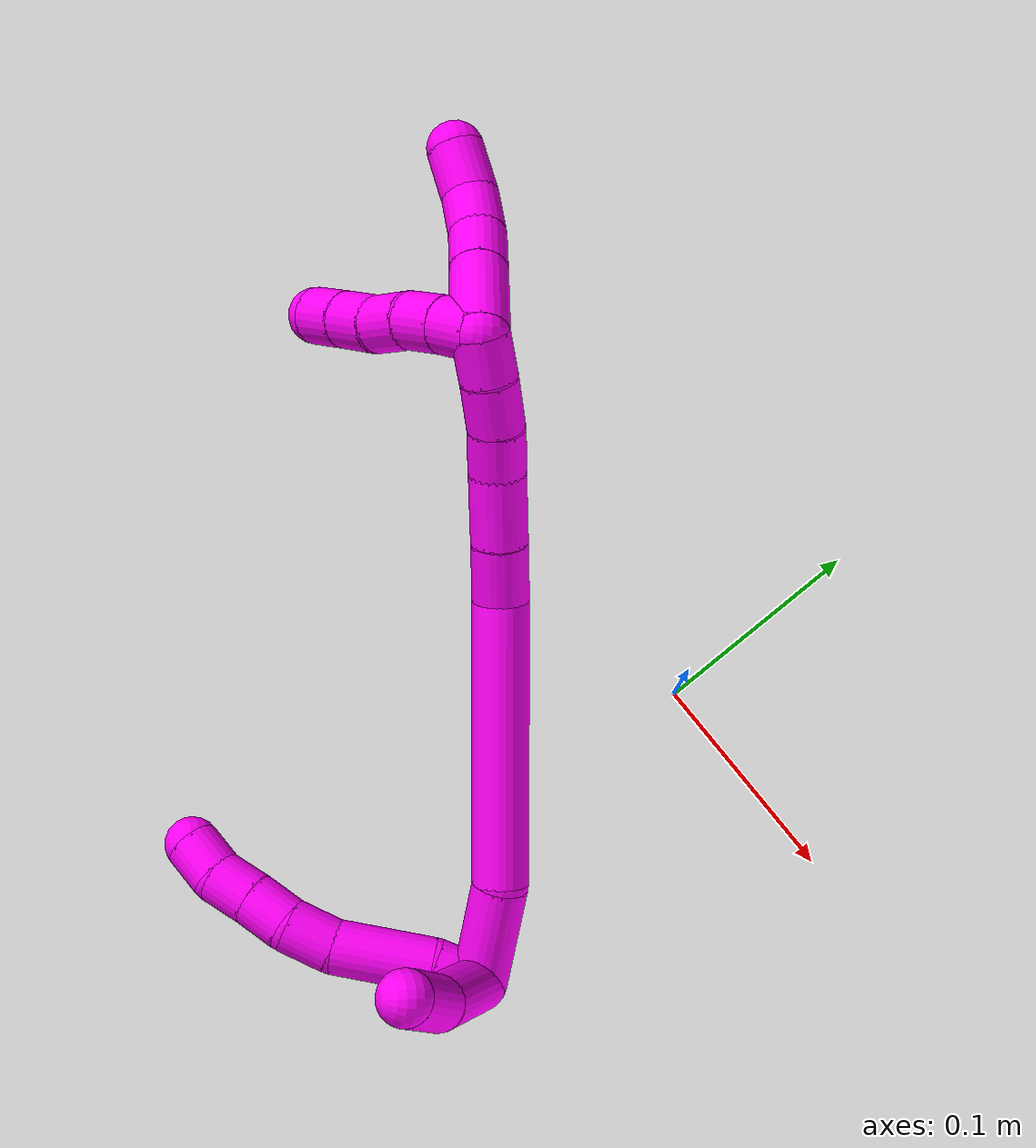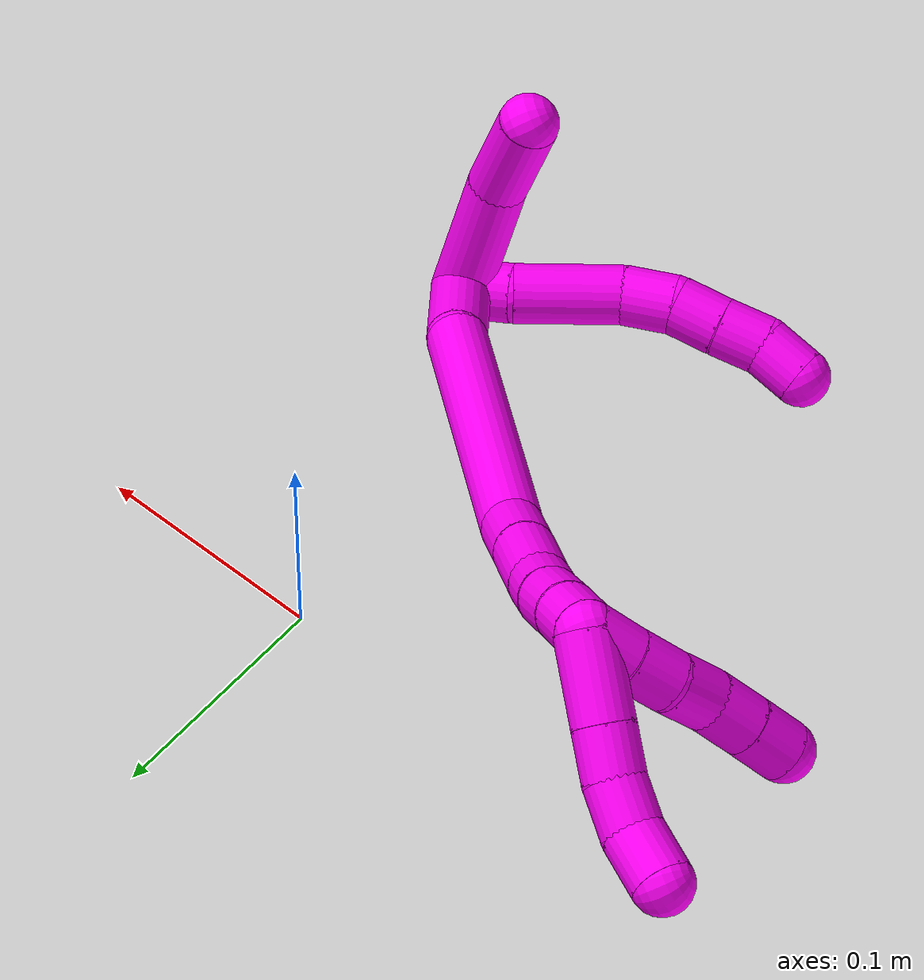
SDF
<sdf version="1.7">
 <world name="default">
  <model name="10">
   <static>0</static>
   <link name="10">
    <collision name="collision-cylinder-e_1_2_8">
     <pose>-0.002143 0.005058 0.009411 -0.493132 -0.197918 0.049966</pose>
     <geometry><cylinder><radius>0.0125</radius><length>0.021793</length></cylinder></geometry>
     <surface>
      <friction><ode><mu>1.16</mu><mu2>1.16</mu2><slip1>0</slip1><slip2>0</slip2></ode></friction>
      <contact><ode><kp>1e+06</kp><kd>1</kd><max_vel>0</max_vel><min_depth>0.001</min_depth></ode></contact>
     </surface>
    </collision>
    <visual name="visual-cylinder-e_1_2_8">
     <pose>-0.002143 0.005058 0.009411 -0.493132 -0.197918 0.049966</pose>
     <geometry><cylinder><radius>0.0125</radius><length>0.021793</length></cylinder></geometry>
     <material><ambient>1 0 0.964706 1</ambient></material>
    </visual>
    <collision name="collision-cylinder-e_2_8_9">
     <pose>-0.012352 0.017554 0.038801 -0.356446 -0.361726 0.065855</pose>
     <geometry><cylinder><radius>0.0125</radius><length>0.045589</length></cylinder></geometry>
     <surface>
      <friction><ode><mu>1.16</mu><mu2>1.16</mu2><slip1>0</slip1><slip2>0</slip2></ode></friction>
      <contact><ode><kp>1e+06</kp><kd>1</kd><max_vel>0</max_vel><min_depth>0.001</min_depth></ode></contact>
     </surface>
    </collision>
    <visual name="visual-cylinder-e_2_8_9">
     <pose>-0.012352 0.017554 0.038801 -0.356446 -0.361726 0.065855</pose>
     <geometry><cylinder><radius>0.0125</radius><length>0.045589</length></cylinder></geometry>
     <material><ambient>1 0 0.964706 1</ambient></material>
    </visual>
    <collision name="collision-cylinder-e_3_9_10">
     <pose>-0.022813 0.031012 0.067982 -0.579208 -0.214412 0.064115</pose>
     <geometry><cylinder><radius>0.0125</radius><length>0.022506</length></cylinder></geometry>
     <surface>
      <friction><ode><mu>1.16</mu><mu2>1.16</mu2><slip1>0</slip1><slip2>0</slip2></ode></friction>
      <contact><ode><kp>1e+06</kp><kd>1</kd><max_vel>0</max_vel><min_depth>0.001</min_depth></ode></contact>
     </surface>
    </collision>
    <visual name="visual-cylinder-e_3_9_10">
     <pose>-0.022813 0.031012 0.067982 -0.579208 -0.214412 0.064115</pose>
     <geometry><cylinder><radius>0.0125</radius><length>0.022506</length></cylinder></geometry>
     <material><ambient>1 0 0.964706 1</ambient></material>
    </visual>
    <collision name="collision-cylinder-e_4_10_11">
     <pose>-0.028266 0.044152 0.083583 -0.838828 -0.309204 0.138751</pose>
     <geometry><cylinder><radius>0.0125</radius><length>0.020101</length></cylinder></geometry>
     <surface>
      <friction><ode><mu>1.16</mu><mu2>1.16</mu2><slip1>0</slip1><slip2>0</slip2></ode></friction>
      <contact><ode><kp>1e+06</kp><kd>1</kd><max_vel>0</max_vel><min_depth>0.001</min_depth></ode></contact>
     </surface>
    </collision>
    <visual name="visual-cylinder-e_4_10_11">
     <pose>-0.028266 0.044152 0.083583 -0.838828 -0.309204 0.138751</pose>
     <geometry><cylinder><radius>0.0125</radius><length>0.020101</length></cylinder></geometry>
     <material><ambient>1 0 0.964706 1</ambient></material>
    </visual>
    <collision name="collision-cylinder-e_5_11_12">
     <pose>-0.03473 0.05797 0.096584 -0.792489 -0.347511 0.146607</pose>
     <geometry><cylinder><radius>0.0125</radius><length>0.020004</length></cylinder></geometry>
     <surface>
      <friction><ode><mu>1.16</mu><mu2>1.16</mu2><slip1>0</slip1><slip2>0</slip2></ode></friction>
      <contact><ode><kp>1e+06</kp><kd>1</kd><max_vel>0</max_vel><min_depth>0.001</min_depth></ode></contact>
     </surface>
    </collision>
    <visual name="visual-cylinder-e_5_11_12">
     <pose>-0.03473 0.05797 0.096584 -0.792489 -0.347511 0.146607</pose>
     <geometry><cylinder><radius>0.0125</radius><length>0.020004</length></cylinder></geometry>
     <material><ambient>1 0 0.964706 1</ambient></material>
    </visual>
    <collision name="collision-cylinder-e_6_12_6">
     <pose>-0.040674 0.073291 0.107574 -1.10008 -0.256452 0.157785</pose>
     <geometry><cylinder><radius>0.0125</radius><length>0.020008</length></cylinder></geometry>
     <surface>
      <friction><ode><mu>1.16</mu><mu2>1.16</mu2><slip1>0</slip1><slip2>0</slip2></ode></friction>
      <contact><ode><kp>1e+06</kp><kd>1</kd><max_vel>0</max_vel><min_depth>0.001</min_depth></ode></contact>
     </surface>
    </collision>
    <visual name="visual-cylinder-e_6_12_6">
     <pose>-0.040674 0.073291 0.107574 -1.10008 -0.256452 0.157785</pose>
     <geometry><cylinder><radius>0.0125</radius><length>0.020008</length></cylinder></geometry>
     <material><ambient>1 0 0.964706 1</ambient></material>
    </visual>
    <collision name="collision-cylinder-e_1_2_13">
     <pose>0.019557 -0.009615 0.019504 0.458005 0.732474 0.178326</pose>
     <geometry><cylinder><radius>0.0125</radius><length>0.058492</length></cylinder></geometry>
     <surface>
      <friction><ode><mu>1.16</mu><mu2>1.16</mu2><slip1>0</slip1><slip2>0</slip2></ode></friction>
      <contact><ode><kp>1e+06</kp><kd>1</kd><max_vel>0</max_vel><min_depth>0.001</min_depth></ode></contact>
     </surface>
    </collision>
    <visual name="visual-cylinder-e_1_2_13">
     <pose>0.019557 -0.009615 0.019504 0.458005 0.732474 0.178326</pose>
     <geometry><cylinder><radius>0.0125</radius><length>0.058492</length></cylinder></geometry>
     <material><ambient>1 0 0.964706 1</ambient></material>
    </visual>
    <collision name="collision-cylinder-e_2_13_5">
     <pose>0.054419 -0.022047 0.052739 0.202378 0.82928 0.089324</pose>
     <geometry><cylinder><radius>0.0125</radius><length>0.041508</length></cylinder></geometry>
     <surface>
      <friction><ode><mu>1.16</mu><mu2>1.16</mu2><slip1>0</slip1><slip2>0</slip2></ode></friction>
      <contact><ode><kp>1e+06</kp><kd>1</kd><max_vel>0</max_vel><min_depth>0.001</min_depth></ode></contact>
     </surface>
    </collision>
    <visual name="visual-cylinder-e_2_13_5">
     <pose>0.054419 -0.022047 0.052739 0.202378 0.82928 0.089324</pose>
     <geometry><cylinder><radius>0.0125</radius><length>0.041508</length></cylinder></geometry>
     <material><ambient>1 0 0.964706 1</ambient></material>
    </visual>
    <collision name="collision-cylinder-e_1_2_14">
     <pose>0.018811 0.016824 0.000263 -1.55516 0.84105 -0.829455</pose>
     <geometry><cylinder><radius>0.0125</radius><length>0.050476</length></cylinder></geometry>
     <surface>
      <friction><ode><mu>1.16</mu><mu2>1.16</mu2><slip1>0</slip1><slip2>0</slip2></ode></friction>
      <contact><ode><kp>1e+06</kp><kd>1</kd><max_vel>0</max_vel><min_depth>0.001</min_depth></ode></contact>
     </surface>
    </collision>
    <visual name="visual-cylinder-e_1_2_14">
     <pose>0.018811 0.016824 0.000263 -1.55516 0.84105 -0.829455</pose>
     <geometry><cylinder><radius>0.0125</radius><length>0.050476</length></cylinder></geometry>
     <material><ambient>1 0 0.964706 1</ambient></material>
    </visual>
    <collision name="collision-cylinder-e_2_14_15">
     <pose>0.071092 0.086725 0.006444 -1.45975 0.559829 -0.50347</pose>
     <geometry><cylinder><radius>0.0125</radius><length>0.126057</length></cylinder></geometry>
     <surface>
      <friction><ode><mu>1.16</mu><mu2>1.16</mu2><slip1>0</slip1><slip2>0</slip2></ode></friction>
      <contact><ode><kp>1e+06</kp><kd>1</kd><max_vel>0</max_vel><min_depth>0.001</min_depth></ode></contact>
     </surface>
    </collision>
    <visual name="visual-cylinder-e_2_14_15">
     <pose>0.071092 0.086725 0.006444 -1.45975 0.559829 -0.50347</pose>
     <geometry><cylinder><radius>0.0125</radius><length>0.126057</length></cylinder></geometry>
     <material><ambient>1 0 0.964706 1</ambient></material>
    </visual>
    <collision name="collision-cylinder-e_3_15_16">
     <pose>0.114467 0.148667 0.015537 -1.22687 0.810687 -0.586785</pose>
     <geometry><cylinder><radius>0.0125</radius><length>0.027329</length></cylinder></geometry>
     <surface>
      <friction><ode><mu>1.16</mu><mu2>1.16</mu2><slip1>0</slip1><slip2>0</slip2></ode></friction>
      <contact><ode><kp>1e+06</kp><kd>1</kd><max_vel>0</max_vel><min_depth>0.001</min_depth></ode></contact>
     </surface>
    </collision>
    <visual name="visual-cylinder-e_3_15_16">
     <pose>0.114467 0.148667 0.015537 -1.22687 0.810687 -0.586785</pose>
     <geometry><cylinder><radius>0.0125</radius><length>0.027329</length></cylinder></geometry>
     <material><ambient>1 0 0.964706 1</ambient></material>
    </visual>
    <collision name="collision-cylinder-e_4_16_17">
     <pose>0.135525 0.168358 0.0223 -1.25079 0.774211 -0.572577</pose>
     <geometry><cylinder><radius>0.0125</radius><length>0.031911</length></cylinder></geometry>
     <surface>
      <friction><ode><mu>1.16</mu><mu2>1.16</mu2><slip1>0</slip1><slip2>0</slip2></ode></friction>
      <contact><ode><kp>1e+06</kp><kd>1</kd><max_vel>0</max_vel><min_depth>0.001</min_depth></ode></contact>
     </surface>
    </collision>
    <visual name="visual-cylinder-e_4_16_17">
     <pose>0.135525 0.168358 0.0223 -1.25079 0.774211 -0.572577</pose>
     <geometry><cylinder><radius>0.0125</radius><length>0.031911</length></cylinder></geometry>
     <material><ambient>1 0 0.964706 1</ambient></material>
    </visual>
    <collision name="collision-cylinder-e_5_17_18">
     <pose>0.154777 0.185176 0.028672 -1.13576 0.886634 -0.588302</pose>
     <geometry><cylinder><radius>0.0125</radius><length>0.020897</length></cylinder></geometry>
     <surface>
      <friction><ode><mu>1.16</mu><mu2>1.16</mu2><slip1>0</slip1><slip2>0</slip2></ode></friction>
      <contact><ode><kp>1e+06</kp><kd>1</kd><max_vel>0</max_vel><min_depth>0.001</min_depth></ode></contact>
     </surface>
    </collision>
    <visual name="visual-cylinder-e_5_17_18">
     <pose>0.154777 0.185176 0.028672 -1.13576 0.886634 -0.588302</pose>
     <geometry><cylinder><radius>0.0125</radius><length>0.020897</length></cylinder></geometry>
     <material><ambient>1 0 0.964706 1</ambient></material>
    </visual>
    <collision name="collision-cylinder-e_6_18_19">
     <pose>0.171008 0.197826 0.035579 -1.01651 0.804112 -0.465179</pose>
     <geometry><cylinder><radius>0.0125</radius><length>0.022588</length></cylinder></geometry>
     <surface>
      <friction><ode><mu>1.16</mu><mu2>1.16</mu2><slip1>0</slip1><slip2>0</slip2></ode></friction>
      <contact><ode><kp>1e+06</kp><kd>1</kd><max_vel>0</max_vel><min_depth>0.001</min_depth></ode></contact>
     </surface>
    </collision>
    <visual name="visual-cylinder-e_6_18_19">
     <pose>0.171008 0.197826 0.035579 -1.01651 0.804112 -0.465179</pose>
     <geometry><cylinder><radius>0.0125</radius><length>0.022588</length></cylinder></geometry>
     <material><ambient>1 0 0.964706 1</ambient></material>
    </visual>
    <collision name="collision-cylinder-e_7_19_1">
     <pose>0.185932 0.211343 0.04351 -1.06378 0.71363 -0.431879</pose>
     <geometry><cylinder><radius>0.0125</radius><length>0.020743</length></cylinder></geometry>
     <surface>
      <friction><ode><mu>1.16</mu><mu2>1.16</mu2><slip1>0</slip1><slip2>0</slip2></ode></friction>
      <contact><ode><kp>1e+06</kp><kd>1</kd><max_vel>0</max_vel><min_depth>0.001</min_depth></ode></contact>
     </surface>
    </collision>
    <visual name="visual-cylinder-e_7_19_1">
     <pose>0.185932 0.211343 0.04351 -1.06378 0.71363 -0.431879</pose>
     <geometry><cylinder><radius>0.0125</radius><length>0.020743</length></cylinder></geometry>
     <material><ambient>1 0 0.964706 1</ambient></material>
    </visual>
    <collision name="collision-cylinder-e_1_1_20">
     <pose>0.185637 0.223946 0.051413 -0.951752 -0.787199 0.421682</pose>
     <geometry><cylinder><radius>0.0125</radius><length>0.02</length></cylinder></geometry>
     <surface>
      <friction><ode><mu>1.16</mu><mu2>1.16</mu2><slip1>0</slip1><slip2>0</slip2></ode></friction>
      <contact><ode><kp>1e+06</kp><kd>1</kd><max_vel>0</max_vel><min_depth>0.001</min_depth></ode></contact>
     </surface>
    </collision>
    <visual name="visual-cylinder-e_1_1_20">
     <pose>0.185637 0.223946 0.051413 -0.951752 -0.787199 0.421682</pose>
     <geometry><cylinder><radius>0.0125</radius><length>0.02</length></cylinder></geometry>
     <material><ambient>1 0 0.964706 1</ambient></material>
    </visual>
    <collision name="collision-cylinder-e_2_20_21">
     <pose>0.171061 0.234871 0.059639 -0.897357 -0.846919 0.42736</pose>
     <geometry><cylinder><radius>0.0125</radius><length>0.02</length></cylinder></geometry>
     <surface>
      <friction><ode><mu>1.16</mu><mu2>1.16</mu2><slip1>0</slip1><slip2>0</slip2></ode></friction>
      <contact><ode><kp>1e+06</kp><kd>1</kd><max_vel>0</max_vel><min_depth>0.001</min_depth></ode></contact>
     </surface>
    </collision>
    <visual name="visual-cylinder-e_2_20_21">
     <pose>0.171061 0.234871 0.059639 -0.897357 -0.846919 0.42736</pose>
     <geometry><cylinder><radius>0.0125</radius><length>0.02</length></cylinder></geometry>
     <material><ambient>1 0 0.964706 1</ambient></material>
    </visual>
    <collision name="collision-cylinder-e_3_21_22">
     <pose>0.155022 0.243763 0.067398 -0.797234 -1.0248 0.465242</pose>
     <geometry><cylinder><radius>0.0125</radius><length>0.02</length></cylinder></geometry>
     <surface>
      <friction><ode><mu>1.16</mu><mu2>1.16</mu2><slip1>0</slip1><slip2>0</slip2></ode></friction>
      <contact><ode><kp>1e+06</kp><kd>1</kd><max_vel>0</max_vel><min_depth>0.001</min_depth></ode></contact>
     </surface>
    </collision>
    <visual name="visual-cylinder-e_3_21_22">
     <pose>0.155022 0.243763 0.067398 -0.797234 -1.0248 0.465242</pose>
     <geometry><cylinder><radius>0.0125</radius><length>0.02</length></cylinder></geometry>
     <material><ambient>1 0 0.964706 1</ambient></material>
    </visual>
    <collision name="collision-cylinder-e_4_22_23">
     <pose>0.138863 0.252887 0.074603 -0.986441 -0.865275 0.486646</pose>
     <geometry><cylinder><radius>0.0125</radius><length>0.02</length></cylinder></geometry>
     <surface>
      <friction><ode><mu>1.16</mu><mu2>1.16</mu2><slip1>0</slip1><slip2>0</slip2></ode></friction>
      <contact><ode><kp>1e+06</kp><kd>1</kd><max_vel>0</max_vel><min_depth>0.001</min_depth></ode></contact>
     </surface>
    </collision>
    <visual name="visual-cylinder-e_4_22_23">
     <pose>0.138863 0.252887 0.074603 -0.986441 -0.865275 0.486646</pose>
     <geometry><cylinder><radius>0.0125</radius><length>0.02</length></cylinder></geometry>
     <material><ambient>1 0 0.964706 1</ambient></material>
    </visual>
    <collision name="collision-cylinder-e_5_23_4">
     <pose>0.123486 0.263633 0.081529 -1.01058 -0.889007 0.515252</pose>
     <geometry><cylinder><radius>0.0125</radius><length>0.02</length></cylinder></geometry>
     <surface>
      <friction><ode><mu>1.16</mu><mu2>1.16</mu2><slip1>0</slip1><slip2>0</slip2></ode></friction>
      <contact><ode><kp>1e+06</kp><kd>1</kd><max_vel>0</max_vel><min_depth>0.001</min_depth></ode></contact>
     </surface>
    </collision>
    <visual name="visual-cylinder-e_5_23_4">
     <pose>0.123486 0.263633 0.081529 -1.01058 -0.889007 0.515252</pose>
     <geometry><cylinder><radius>0.0125</radius><length>0.02</length></cylinder></geometry>
     <material><ambient>1 0 0.964706 1</ambient></material>
    </visual>
    <collision name="collision-cylinder-e_1_1_24">
     <pose>0.189974 0.235471 0.043782 -1.77268 -0.154544 0.189189</pose>
     <geometry><cylinder><radius>0.0125</radius><length>0.035689</length></cylinder></geometry>
     <surface>
      <friction><ode><mu>1.16</mu><mu2>1.16</mu2><slip1>0</slip1><slip2>0</slip2></ode></friction>
      <contact><ode><kp>1e+06</kp><kd>1</kd><max_vel>0</max_vel><min_depth>0.001</min_depth></ode></contact>
     </surface>
    </collision>
    <visual name="visual-cylinder-e_1_1_24">
     <pose>0.189974 0.235471 0.043782 -1.77268 -0.154544 0.189189</pose>
     <geometry><cylinder><radius>0.0125</radius><length>0.035689</length></cylinder></geometry>
     <material><ambient>1 0 0.964706 1</ambient></material>
    </visual>
    <collision name="collision-cylinder-e_2_24_25">
     <pose>0.185498 0.262772 0.038206 -1.77158 -0.167433 0.204704</pose>
     <geometry><cylinder><radius>0.0125</radius><length>0.020757</length></cylinder></geometry>
     <surface>
      <friction><ode><mu>1.16</mu><mu2>1.16</mu2><slip1>0</slip1><slip2>0</slip2></ode></friction>
      <contact><ode><kp>1e+06</kp><kd>1</kd><max_vel>0</max_vel><min_depth>0.001</min_depth></ode></contact>
     </surface>
    </collision>
    <visual name="visual-cylinder-e_2_24_25">
     <pose>0.185498 0.262772 0.038206 -1.77158 -0.167433 0.204704</pose>
     <geometry><cylinder><radius>0.0125</radius><length>0.020757</length></cylinder></geometry>
     <material><ambient>1 0 0.964706 1</ambient></material>
    </visual>
    <collision name="collision-cylinder-e_3_25_26">
     <pose>0.182713 0.283075 0.035815 -1.60484 -0.102221 0.105755</pose>
     <geometry><cylinder><radius>0.0125</radius><length>0.020671</length></cylinder></geometry>
     <surface>
      <friction><ode><mu>1.16</mu><mu2>1.16</mu2><slip1>0</slip1><slip2>0</slip2></ode></friction>
      <contact><ode><kp>1e+06</kp><kd>1</kd><max_vel>0</max_vel><min_depth>0.001</min_depth></ode></contact>
     </surface>
    </collision>
    <visual name="visual-cylinder-e_3_25_26">
     <pose>0.182713 0.283075 0.035815 -1.60484 -0.102221 0.105755</pose>
     <geometry><cylinder><radius>0.0125</radius><length>0.020671</length></cylinder></geometry>
     <material><ambient>1 0 0.964706 1</ambient></material>
    </visual>
    <collision name="collision-cylinder-e_4_26_3">
     <pose>0.182889 0.304486 0.037789 -1.36506 0.107727 -0.087595</pose>
     <geometry><cylinder><radius>0.0125</radius><length>0.022884</length></cylinder></geometry>
     <surface>
      <friction><ode><mu>1.16</mu><mu2>1.16</mu2><slip1>0</slip1><slip2>0</slip2></ode></friction>
      <contact><ode><kp>1e+06</kp><kd>1</kd><max_vel>0</max_vel><min_depth>0.001</min_depth></ode></contact>
     </surface>
    </collision>
    <visual name="visual-cylinder-e_4_26_3">
     <pose>0.182889 0.304486 0.037789 -1.36506 0.107727 -0.087595</pose>
     <geometry><cylinder><radius>0.0125</radius><length>0.022884</length></cylinder></geometry>
     <material><ambient>1 0 0.964706 1</ambient></material>
    </visual>
    <collision name="collision-sphere-3">
     <pose>0.184119 0.315622 0.040113 0 -0 0</pose>
     <geometry><sphere><radius>0.0125</radius></sphere></geometry>
     <surface>
      <friction><ode><mu>1.16</mu><mu2>1.16</mu2><slip1>0</slip1><slip2>0</slip2></ode></friction>
      <contact><ode><kp>1e+06</kp><kd>1</kd><max_vel>0</max_vel><min_depth>0.001</min_depth></ode></contact>
     </surface>
    </collision>
    <visual name="visual-sphere-3">
     <pose>0.184119 0.315622 0.040113 0 -0 0</pose>
     <geometry><sphere><radius>0.0125</radius></sphere></geometry>
     <material><ambient>1 0 0.964706 1</ambient></material>
    </visual>
    <collision name="collision-sphere-26">
     <pose>0.181659 0.29335 0.035465 0 -0 0</pose>
     <geometry><sphere><radius>0.0125</radius></sphere></geometry>
     <surface>
      <friction><ode><mu>1.16</mu><mu2>1.16</mu2><slip1>0</slip1><slip2>0</slip2></ode></friction>
      <contact><ode><kp>1e+06</kp><kd>1</kd><max_vel>0</max_vel><min_depth>0.001</min_depth></ode></contact>
     </surface>
    </collision>
    <visual name="visual-sphere-26">
     <pose>0.181659 0.29335 0.035465 0 -0 0</pose>
     <geometry><sphere><radius>0.0125</radius></sphere></geometry>
     <material><ambient>1 0 0.964706 1</ambient></material>
    </visual>
    <collision name="collision-sphere-25">
     <pose>0.183768 0.2728 0.036165 0 -0 0</pose>
     <geometry><sphere><radius>0.0125</radius></sphere></geometry>
     <surface>
      <friction><ode><mu>1.16</mu><mu2>1.16</mu2><slip1>0</slip1><slip2>0</slip2></ode></friction>
      <contact><ode><kp>1e+06</kp><kd>1</kd><max_vel>0</max_vel><min_depth>0.001</min_depth></ode></contact>
     </surface>
    </collision>
    <visual name="visual-sphere-25">
     <pose>0.183768 0.2728 0.036165 0 -0 0</pose>
     <geometry><sphere><radius>0.0125</radius></sphere></geometry>
     <material><ambient>1 0 0.964706 1</ambient></material>
    </visual>
    <collision name="collision-sphere-24">
     <pose>0.187227 0.252744 0.040247 0 -0 0</pose>
     <geometry><sphere><radius>0.0125</radius></sphere></geometry>
     <surface>
      <friction><ode><mu>1.16</mu><mu2>1.16</mu2><slip1>0</slip1><slip2>0</slip2></ode></friction>
      <contact><ode><kp>1e+06</kp><kd>1</kd><max_vel>0</max_vel><min_depth>0.001</min_depth></ode></contact>
     </surface>
    </collision>
    <visual name="visual-sphere-24">
     <pose>0.187227 0.252744 0.040247 0 -0 0</pose>
     <geometry><sphere><radius>0.0125</radius></sphere></geometry>
     <material><ambient>1 0 0.964706 1</ambient></material>
    </visual>
    <collision name="collision-sphere-4">
     <pose>0.115722 0.268972 0.084877 0 -0 0</pose>
     <geometry><sphere><radius>0.0125</radius></sphere></geometry>
     <surface>
      <friction><ode><mu>1.16</mu><mu2>1.16</mu2><slip1>0</slip1><slip2>0</slip2></ode></friction>
      <contact><ode><kp>1e+06</kp><kd>1</kd><max_vel>0</max_vel><min_depth>0.001</min_depth></ode></contact>
     </surface>
    </collision>
    <visual name="visual-sphere-4">
     <pose>0.115722 0.268972 0.084877 0 -0 0</pose>
     <geometry><sphere><radius>0.0125</radius></sphere></geometry>
     <material><ambient>1 0 0.964706 1</ambient></material>
    </visual>
    <collision name="collision-sphere-23">
     <pose>0.131251 0.258295 0.07818 0 -0 0</pose>
     <geometry><sphere><radius>0.0125</radius></sphere></geometry>
     <surface>
      <friction><ode><mu>1.16</mu><mu2>1.16</mu2><slip1>0</slip1><slip2>0</slip2></ode></friction>
      <contact><ode><kp>1e+06</kp><kd>1</kd><max_vel>0</max_vel><min_depth>0.001</min_depth></ode></contact>
     </surface>
    </collision>
    <visual name="visual-sphere-23">
     <pose>0.131251 0.258295 0.07818 0 -0 0</pose>
     <geometry><sphere><radius>0.0125</radius></sphere></geometry>
     <material><ambient>1 0 0.964706 1</ambient></material>
    </visual>
    <collision name="collision-sphere-22">
     <pose>0.146476 0.247478 0.071026 0 -0 0</pose>
     <geometry><sphere><radius>0.0125</radius></sphere></geometry>
     <surface>
      <friction><ode><mu>1.16</mu><mu2>1.16</mu2><slip1>0</slip1><slip2>0</slip2></ode></friction>
      <contact><ode><kp>1e+06</kp><kd>1</kd><max_vel>0</max_vel><min_depth>0.001</min_depth></ode></contact>
     </surface>
    </collision>
    <visual name="visual-sphere-22">
     <pose>0.146476 0.247478 0.071026 0 -0 0</pose>
     <geometry><sphere><radius>0.0125</radius></sphere></geometry>
     <material><ambient>1 0 0.964706 1</ambient></material>
    </visual>
    <collision name="collision-sphere-21">
     <pose>0.163568 0.240048 0.06377 0 -0 0</pose>
     <geometry><sphere><radius>0.0125</radius></sphere></geometry>
     <surface>
      <friction><ode><mu>1.16</mu><mu2>1.16</mu2><slip1>0</slip1><slip2>0</slip2></ode></friction>
      <contact><ode><kp>1e+06</kp><kd>1</kd><max_vel>0</max_vel><min_depth>0.001</min_depth></ode></contact>
     </surface>
    </collision>
    <visual name="visual-sphere-21">
     <pose>0.163568 0.240048 0.06377 0 -0 0</pose>
     <geometry><sphere><radius>0.0125</radius></sphere></geometry>
     <material><ambient>1 0 0.964706 1</ambient></material>
    </visual>
    <collision name="collision-sphere-20">
     <pose>0.178553 0.229694 0.055509 0 -0 0</pose>
     <geometry><sphere><radius>0.0125</radius></sphere></geometry>
     <surface>
      <friction><ode><mu>1.16</mu><mu2>1.16</mu2><slip1>0</slip1><slip2>0</slip2></ode></friction>
      <contact><ode><kp>1e+06</kp><kd>1</kd><max_vel>0</max_vel><min_depth>0.001</min_depth></ode></contact>
     </surface>
    </collision>
    <visual name="visual-sphere-20">
     <pose>0.178553 0.229694 0.055509 0 -0 0</pose>
     <geometry><sphere><radius>0.0125</radius></sphere></geometry>
     <material><ambient>1 0 0.964706 1</ambient></material>
    </visual>
    <collision name="collision-sphere-12">
     <pose>-0.038136 0.064667 0.103186 0 -0 0</pose>
     <geometry><sphere><radius>0.0125</radius></sphere></geometry>
     <surface>
      <friction><ode><mu>1.16</mu><mu2>1.16</mu2><slip1>0</slip1><slip2>0</slip2></ode></friction>
      <contact><ode><kp>1e+06</kp><kd>1</kd><max_vel>0</max_vel><min_depth>0.001</min_depth></ode></contact>
     </surface>
    </collision>
    <visual name="visual-sphere-12">
     <pose>-0.038136 0.064667 0.103186 0 -0 0</pose>
     <geometry><sphere><radius>0.0125</radius></sphere></geometry>
     <material><ambient>1 0 0.964706 1</ambient></material>
    </visual>
    <collision name="collision-sphere-11">
     <pose>-0.031324 0.051274 0.089981 0 -0 0</pose>
     <geometry><sphere><radius>0.0125</radius></sphere></geometry>
     <surface>
      <friction><ode><mu>1.16</mu><mu2>1.16</mu2><slip1>0</slip1><slip2>0</slip2></ode></friction>
      <contact><ode><kp>1e+06</kp><kd>1</kd><max_vel>0</max_vel><min_depth>0.001</min_depth></ode></contact>
     </surface>
    </collision>
    <visual name="visual-sphere-11">
     <pose>-0.031324 0.051274 0.089981 0 -0 0</pose>
     <geometry><sphere><radius>0.0125</radius></sphere></geometry>
     <material><ambient>1 0 0.964706 1</ambient></material>
    </visual>
    <collision name="collision-sphere-10">
     <pose>-0.025207 0.037031 0.077184 0 -0 0</pose>
     <geometry><sphere><radius>0.0125</radius></sphere></geometry>
     <surface>
      <friction><ode><mu>1.16</mu><mu2>1.16</mu2><slip1>0</slip1><slip2>0</slip2></ode></friction>
      <contact><ode><kp>1e+06</kp><kd>1</kd><max_vel>0</max_vel><min_depth>0.001</min_depth></ode></contact>
     </surface>
    </collision>
    <visual name="visual-sphere-10">
     <pose>-0.025207 0.037031 0.077184 0 -0 0</pose>
     <geometry><sphere><radius>0.0125</radius></sphere></geometry>
     <material><ambient>1 0 0.964706 1</ambient></material>
    </visual>
    <collision name="collision-sphere-9">
     <pose>-0.020419 0.024994 0.05878 0 -0 0</pose>
     <geometry><sphere><radius>0.0125</radius></sphere></geometry>
     <surface>
      <friction><ode><mu>1.16</mu><mu2>1.16</mu2><slip1>0</slip1><slip2>0</slip2></ode></friction>
      <contact><ode><kp>1e+06</kp><kd>1</kd><max_vel>0</max_vel><min_depth>0.001</min_depth></ode></contact>
     </surface>
    </collision>
    <visual name="visual-sphere-9">
     <pose>-0.020419 0.024994 0.05878 0 -0 0</pose>
     <geometry><sphere><radius>0.0125</radius></sphere></geometry>
     <material><ambient>1 0 0.964706 1</ambient></material>
    </visual>
    <collision name="collision-sphere-2">
     <geometry><sphere><radius>0.0125</radius></sphere></geometry>
     <surface>
      <friction><ode><mu>1.16</mu><mu2>1.16</mu2><slip1>0</slip1><slip2>0</slip2></ode></friction>
      <contact><ode><kp>1e+06</kp><kd>1</kd><max_vel>0</max_vel><min_depth>0.001</min_depth></ode></contact>
     </surface>
    </collision>
    <visual name="visual-sphere-2">
     <geometry><sphere><radius>0.0125</radius></sphere></geometry>
     <material><ambient>1 0 0.964706 1</ambient></material>
    </visual>
    <collision name="collision-sphere-19">
     <pose>0.179143 0.204488 0.039703 0 -0 0</pose>
     <geometry><sphere><radius>0.0125</radius></sphere></geometry>
     <surface>
      <friction><ode><mu>1.16</mu><mu2>1.16</mu2><slip1>0</slip1><slip2>0</slip2></ode></friction>
      <contact><ode><kp>1e+06</kp><kd>1</kd><max_vel>0</max_vel><min_depth>0.001</min_depth></ode></contact>
     </surface>
    </collision>
    <visual name="visual-sphere-19">
     <pose>0.179143 0.204488 0.039703 0 -0 0</pose>
     <geometry><sphere><radius>0.0125</radius></sphere></geometry>
     <material><ambient>1 0 0.964706 1</ambient></material>
    </visual>
    <collision name="collision-sphere-8">
     <pose>-0.004285 0.010115 0.018822 0 -0 0</pose>
     <geometry><sphere><radius>0.0125</radius></sphere></geometry>
     <surface>
      <friction><ode><mu>1.16</mu><mu2>1.16</mu2><slip1>0</slip1><slip2>0</slip2></ode></friction>
      <contact><ode><kp>1e+06</kp><kd>1</kd><max_vel>0</max_vel><min_depth>0.001</min_depth></ode></contact>
     </surface>
    </collision>
    <visual name="visual-sphere-8">
     <pose>-0.004285 0.010115 0.018822 0 -0 0</pose>
     <geometry><sphere><radius>0.0125</radius></sphere></geometry>
     <material><ambient>1 0 0.964706 1</ambient></material>
    </visual>
    <collision name="collision-sphere-6">
     <pose>-0.043211 0.081915 0.111963 0 -0 0</pose>
     <geometry><sphere><radius>0.0125</radius></sphere></geometry>
     <surface>
      <friction><ode><mu>1.16</mu><mu2>1.16</mu2><slip1>0</slip1><slip2>0</slip2></ode></friction>
      <contact><ode><kp>1e+06</kp><kd>1</kd><max_vel>0</max_vel><min_depth>0.001</min_depth></ode></contact>
     </surface>
    </collision>
    <visual name="visual-sphere-6">
     <pose>-0.043211 0.081915 0.111963 0 -0 0</pose>
     <geometry><sphere><radius>0.0125</radius></sphere></geometry>
     <material><ambient>1 0 0.964706 1</ambient></material>
    </visual>
    <collision name="collision-sphere-13">
     <pose>0.039114 -0.019229 0.039008 0 -0 0</pose>
     <geometry><sphere><radius>0.0125</radius></sphere></geometry>
     <surface>
      <friction><ode><mu>1.16</mu><mu2>1.16</mu2><slip1>0</slip1><slip2>0</slip2></ode></friction>
      <contact><ode><kp>1e+06</kp><kd>1</kd><max_vel>0</max_vel><min_depth>0.001</min_depth></ode></contact>
     </surface>
    </collision>
    <visual name="visual-sphere-13">
     <pose>0.039114 -0.019229 0.039008 0 -0 0</pose>
     <geometry><sphere><radius>0.0125</radius></sphere></geometry>
     <material><ambient>1 0 0.964706 1</ambient></material>
    </visual>
    <collision name="collision-sphere-5">
     <pose>0.069724 -0.024864 0.06647 0 -0 0</pose>
     <geometry><sphere><radius>0.0125</radius></sphere></geometry>
     <surface>
      <friction><ode><mu>1.16</mu><mu2>1.16</mu2><slip1>0</slip1><slip2>0</slip2></ode></friction>
      <contact><ode><kp>1e+06</kp><kd>1</kd><max_vel>0</max_vel><min_depth>0.001</min_depth></ode></contact>
     </surface>
    </collision>
    <visual name="visual-sphere-5">
     <pose>0.069724 -0.024864 0.06647 0 -0 0</pose>
     <geometry><sphere><radius>0.0125</radius></sphere></geometry>
     <material><ambient>1 0 0.964706 1</ambient></material>
    </visual>
    <collision name="collision-sphere-14">
     <pose>0.037622 0.033647 0.000526 0 -0 0</pose>
     <geometry><sphere><radius>0.0125</radius></sphere></geometry>
     <surface>
      <friction><ode><mu>1.16</mu><mu2>1.16</mu2><slip1>0</slip1><slip2>0</slip2></ode></friction>
      <contact><ode><kp>1e+06</kp><kd>1</kd><max_vel>0</max_vel><min_depth>0.001</min_depth></ode></contact>
     </surface>
    </collision>
    <visual name="visual-sphere-14">
     <pose>0.037622 0.033647 0.000526 0 -0 0</pose>
     <geometry><sphere><radius>0.0125</radius></sphere></geometry>
     <material><ambient>1 0 0.964706 1</ambient></material>
    </visual>
    <collision name="collision-sphere-15">
     <pose>0.104563 0.139803 0.012363 0 -0 0</pose>
     <geometry><sphere><radius>0.0125</radius></sphere></geometry>
     <surface>
      <friction><ode><mu>1.16</mu><mu2>1.16</mu2><slip1>0</slip1><slip2>0</slip2></ode></friction>
      <contact><ode><kp>1e+06</kp><kd>1</kd><max_vel>0</max_vel><min_depth>0.001</min_depth></ode></contact>
     </surface>
    </collision>
    <visual name="visual-sphere-15">
     <pose>0.104563 0.139803 0.012363 0 -0 0</pose>
     <geometry><sphere><radius>0.0125</radius></sphere></geometry>
     <material><ambient>1 0 0.964706 1</ambient></material>
    </visual>
    <collision name="collision-sphere-16">
     <pose>0.12437 0.15753 0.018712 0 -0 0</pose>
     <geometry><sphere><radius>0.0125</radius></sphere></geometry>
     <surface>
      <friction><ode><mu>1.16</mu><mu2>1.16</mu2><slip1>0</slip1><slip2>0</slip2></ode></friction>
      <contact><ode><kp>1e+06</kp><kd>1</kd><max_vel>0</max_vel><min_depth>0.001</min_depth></ode></contact>
     </surface>
    </collision>
    <visual name="visual-sphere-16">
     <pose>0.12437 0.15753 0.018712 0 -0 0</pose>
     <geometry><sphere><radius>0.0125</radius></sphere></geometry>
     <material><ambient>1 0 0.964706 1</ambient></material>
    </visual>
    <collision name="collision-sphere-17">
     <pose>0.14668 0.179187 0.025889 0 -0 0</pose>
     <geometry><sphere><radius>0.0125</radius></sphere></geometry>
     <surface>
      <friction><ode><mu>1.16</mu><mu2>1.16</mu2><slip1>0</slip1><slip2>0</slip2></ode></friction>
      <contact><ode><kp>1e+06</kp><kd>1</kd><max_vel>0</max_vel><min_depth>0.001</min_depth></ode></contact>
     </surface>
    </collision>
    <visual name="visual-sphere-17">
     <pose>0.14668 0.179187 0.025889 0 -0 0</pose>
     <geometry><sphere><radius>0.0125</radius></sphere></geometry>
     <material><ambient>1 0 0.964706 1</ambient></material>
    </visual>
    <collision name="collision-sphere-18">
     <pose>0.162874 0.191164 0.031455 0 -0 0</pose>
     <geometry><sphere><radius>0.0125</radius></sphere></geometry>
     <surface>
      <friction><ode><mu>1.16</mu><mu2>1.16</mu2><slip1>0</slip1><slip2>0</slip2></ode></friction>
      <contact><ode><kp>1e+06</kp><kd>1</kd><max_vel>0</max_vel><min_depth>0.001</min_depth></ode></contact>
     </surface>
    </collision>
    <visual name="visual-sphere-18">
     <pose>0.162874 0.191164 0.031455 0 -0 0</pose>
     <geometry><sphere><radius>0.0125</radius></sphere></geometry>
     <material><ambient>1 0 0.964706 1</ambient></material>
    </visual>
    <collision name="collision-sphere-1">
     <pose>0.192721 0.218197 0.047317 0 -0 0</pose>
     <geometry><sphere><radius>0.0125</radius></sphere></geometry>
     <surface>
      <friction><ode><mu>1.16</mu><mu2>1.16</mu2><slip1>0</slip1><slip2>0</slip2></ode></friction>
      <contact><ode><kp>1e+06</kp><kd>1</kd><max_vel>0</max_vel><min_depth>0.001</min_depth></ode></contact>
     </surface>
    </collision>
    <visual name="visual-sphere-1">
     <pose>0.192721 0.218197 0.047317 0 -0 0</pose>
     <geometry><sphere><radius>0.0125</radius></sphere></geometry>
     <material><ambient>1 0 0.964706 1</ambient></material>
    </visual>
    <inertial>
     <pose>0.083459 0.11819 0.03669 0 -0 0</pose>
     <mass>0.75</mass>
     <inertia>
      <ixx>0.000127</ixx>
      <ixy>0</ixy>
      <ixz>0</ixz>
      <iyy>8.1e-05</iyy>
      <iyz>0</iyz>
      <izz>-0.00027</izz>
     </inertia>
    </inertial>
   </link>
   <pose>0.046782 -0.153356 0.028024 -0.549643 -1.04664 1.53386</pose>
  </model>
 </world>
</sdf>
